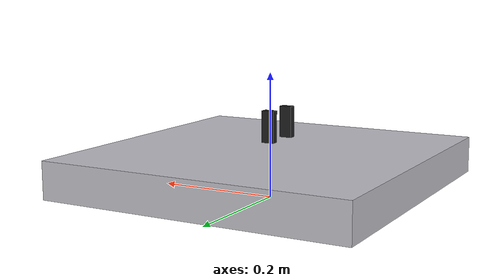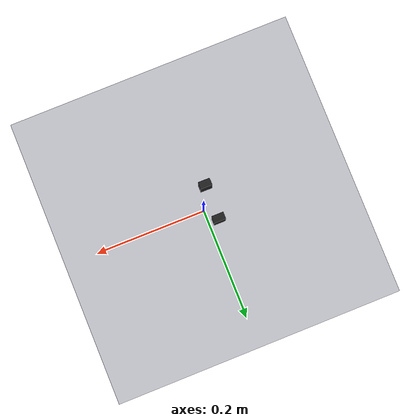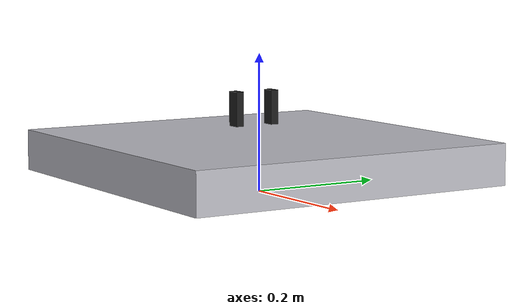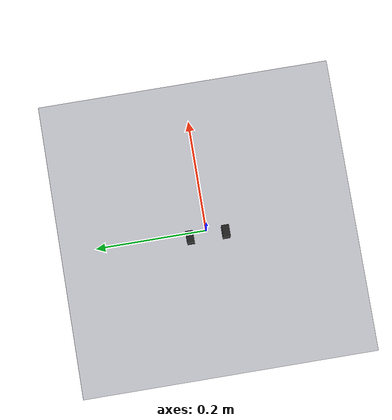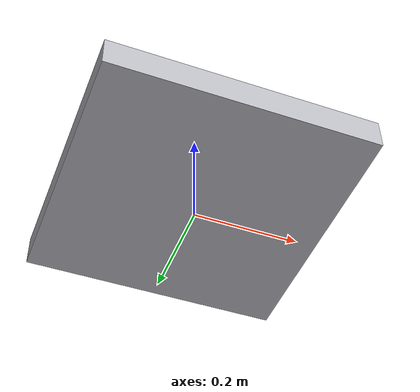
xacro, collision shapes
<?xml version="1.0" ?>
<robot name="onrobot_2fg14_standalone" xmlns:xacro="http://www.ros.org/wiki/xacro">

  <!-- Arguments for standalone visualization -->
  <xacro:arg name="prefix" default=""/>
  <xacro:arg name="finger_configuration" default="outwards"/>

  <!-- Include gripper macro -->
  <xacro:include filename="$(find ur_onrobot)/urdf/onrobot_2fg14.xacro"/>

  <!-- Instantiate gripper for standalone visualization -->
  <xacro:onrobot_2fg14_gripper
    prefix="$(arg prefix)"
    finger_configuration="$(arg finger_configuration)"
  />

</robot>

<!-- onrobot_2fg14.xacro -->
<robot name="onrobot_2fg14" xmlns:xacro="http://www.ros.org/wiki/xacro">

<xacro:include filename="$(find ur_onrobot)/urdf/materials.xacro" />

<xacro:macro name="onrobot_2fg14_gripper" params="prefix finger_configuration=outwards">

  <xacro:property name="config" value="${finger_configuration}"/>

  <!-- NOTE: Using FG7 meshes as placeholder until FG14-specific meshes are available -->
  <!-- FG14 is approximately 2x larger in stroke (140mm vs 70mm) -->

  <xacro:if value="${config == 'outwards'}">
    <link name="${prefix}base_link">
      <inertial>
        <!-- FG14 mass: ~2.5kg (scaled from FG7 1.265kg) -->
        <origin xyz="-4.898915958379213e-05 2.84756960271082e-06 0.06811082379774974" rpy="0 0 0"/>
        <mass value="2.5"/>
        <inertia ixx="0.003008" iyy="0.003624" izz="0.002106" ixy="-0.0" iyz="0.0" ixz="-6e-06"/>
      </inertial>
      <visual>
        <origin xyz="0 0 0" rpy="0 0 0"/>
        <geometry>
          <mesh filename="package://ur_onrobot/meshes/base_link.stl" scale="0.001 0.001 0.001"/>
        </geometry>
        <material name="silver"/>
      </visual>
      <collision>
        <origin xyz="0 0 0.05" rpy="0 0 0"/>
        <geometry>
          <box size="0.5 0.5 0.06"/>
        </geometry>
      </collision>
    </link>

    <link name="${prefix}right_finger_link">
      <inertial>
        <origin xyz="0.017874296677847158 0.02949104051991925 0.01523421548622829" rpy="0 0 0"/>
        <mass value="0.046438766711844576"/>  <!-- 2x FG7 finger mass -->
        <inertia ixx="1.2e-05" iyy="1e-05" izz="4e-06" ixy="-0.0" iyz="-0.0" ixz="2e-06"/>
      </inertial>
      <visual>
        <origin xyz="0.054361 0.029494 -0.12005" rpy="0 0 0"/>
        <geometry>
          <mesh filename="package://ur_onrobot/meshes/right_finger_link.stl" scale="0.001 0.001 0.001"/>
        </geometry>
        <material name="black"/>
      </visual>
      <collision>
        <origin xyz="0.04 0 0" rpy="0 0 0"/>
        <geometry>
          <box size="0.02 0.012 0.05"/>
        </geometry>
      </collision>
    </link>

    <link name="${prefix}left_finger_link">
      <inertial>
        <origin xyz="0.004247703322119739 0.029496959480080673 0.015234215486237948" rpy="0 0 0"/>
        <mass value="0.046438766711844576"/>  <!-- 2x FG7 finger mass -->
        <inertia ixx="1.2e-05" iyy="1e-05" izz="4e-06" ixy="-0.0" iyz="0.0" ixz="-2e-06"/>
      </inertial>
      <visual>
        <origin xyz="0.054361 -0.029494 -0.12005" rpy="0 0 0"/>
        <geometry>
          <mesh filename="package://ur_onrobot/meshes/left_finger_link.stl" scale="0.001 0.001 0.001"/>
        </geometry>
        <material name="black"/>
      </visual>
      <collision>
        <origin xyz="0.04 0 0" rpy="0 0 0"/>
        <geometry>
          <box size="0.02 0.012 0.05"/>
        </geometry>
      </collision>
    </link>

    <joint name="${prefix}left_finger_joint" type="prismatic">
      <origin xyz="-0.054361 0.029494 0.12005" rpy="0 0 0"/>
      <parent link="${prefix}base_link"/>
      <child link="${prefix}left_finger_link"/>
      <axis xyz="1.0 0.0 0.0"/>
      <!-- FG14: 0-140mm stroke = 0.070m per finger (vs FG7: 0.019m) -->
      <limit lower="0.0" upper="0.070" effort="300" velocity="0.45"/>
    </joint>

    <joint name="${prefix}right_finger_joint" type="prismatic">
      <origin xyz="-0.054361 -0.029494 0.12005" rpy="0 0 0"/>
      <parent link="${prefix}base_link"/>
      <child link="${prefix}right_finger_link"/>
      <axis xyz="-1.0 0.0 0.0"/>
      <!-- Symmetric movement with mimic joint -->
      <limit lower="-0.070" upper="0.070" effort="300" velocity="0.45"/>
      <mimic joint="${prefix}left_finger_joint" multiplier="1.0"/>
    </joint>
  </xacro:if>

  <xacro:if value="${config == 'inwards'}">
    <link name="${prefix}base_link">
      <inertial>
        <origin xyz="-4.8989159583623376e-05 2.847569602502098e-06 0.06811082379775064" rpy="0 0 0"/>
        <mass value="2.5"/>
        <inertia ixx="0.003008" iyy="0.003624" izz="0.002106" ixy="-0.0" iyz="0.0" ixz="-6e-06"/>
      </inertial>
      <visual>
        <origin xyz="0 0 0" rpy="0 0 0"/>
        <geometry>
          <mesh filename="package://ur_onrobot/meshes/base_link.stl" scale="0.001 0.001 0.001"/>
        </geometry>
        <material name="silver"/>
      </visual>
      <collision>
        <origin xyz="0 0 0.05" rpy="0 0 0"/>
        <geometry>
          <box size="0.05 0.05 0.06"/>
        </geometry>
      </collision>
    </link>

    <link name="${prefix}right_finger_link">
      <inertial>
        <origin xyz="0.029847703322119633 0.029496959480087837 0.015234215486232036" rpy="0 0 0"/>
        <mass value="0.046438766711844576"/>
        <inertia ixx="1.2e-05" iyy="1e-05" izz="4e-06" ixy="-0.0" iyz="0.0" ixz="-2e-06"/>
      </inertial>
      <visual>
        <origin xyz="0.04 0.029494 -0.119" rpy="0 0 0"/>
        <geometry>
          <mesh filename="package://ur_onrobot/meshes/right_finger_link.stl" scale="0.001 0.001 0.001"/>
        </geometry>
        <material name="red_silver">
          <color rgba="0.8 0.5 0.5 1"/>
        </material>
      </visual>
      <collision>
        <origin xyz="0.01 0.029494 0.025" rpy="0 0 0"/>
        <geometry>
          <box size="0.004 0.02 0.05"/>
        </geometry>
      </collision>
    </link>

    <link name="${prefix}left_finger_link">
      <inertial>
        <origin xyz="-0.007725703322151688 0.029491040519911117 0.015234215486238503" rpy="0 0 0"/>
        <mass value="0.046438766711844576"/>
        <inertia ixx="1.2e-05" iyy="1e-05" izz="4e-06" ixy="-0.0" iyz="-0.0" ixz="2e-06"/>
      </inertial>
      <visual>
        <origin xyz="-0.04 0.029494 -0.119" rpy="0 0 0"/>
        <geometry>
          <mesh filename="package://ur_onrobot/meshes/left_finger_link.stl" scale="0.001 0.001 0.001"/>
        </geometry>
        <material name="silver"/>
      </visual>
      <collision>
        <origin xyz="-0.01 0.029494 0.025" rpy="0 0 0"/>
        <geometry>
          <box size="0.004 0.02 0.05"/>
        </geometry>
      </collision>
    </link>

    <joint name="${prefix}left_finger_joint" type="prismatic">
      <origin xyz="0 -0.029494 0.12005" rpy="0 0 0"/>
      <parent link="${prefix}base_link"/>
      <child link="${prefix}left_finger_link"/>
      <axis xyz="-1.0 0.0 0.0"/>
      <limit upper="0.0" lower="-0.070" effort="300" velocity="0.45"/>
    </joint>

    <joint name="${prefix}right_finger_joint" type="prismatic">
      <origin xyz="0 -0.029494 0.12005" rpy="0 0 0"/>
      <!-- good -0.02 -->
      <parent link="${prefix}base_link"/>
      <child link="${prefix}right_finger_link"/>
      <axis xyz="1.0 0.0 0.0"/>
      <limit lower="-0.070" upper="0.070" effort="300" velocity="0.45"/>
      <mimic joint="${prefix}left_finger_joint" multiplier="1.0"/>
    </joint>

  </xacro:if>
</xacro:macro>

</robot>
